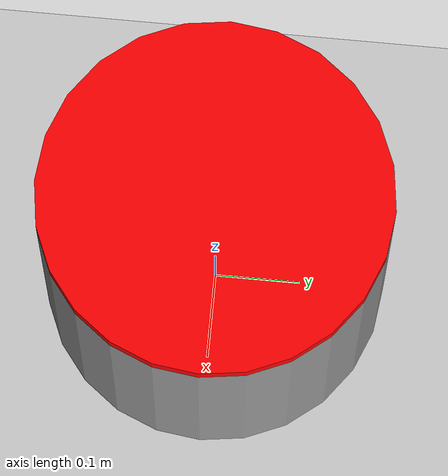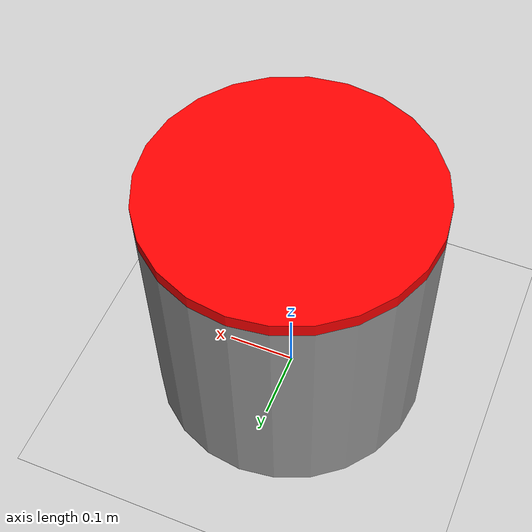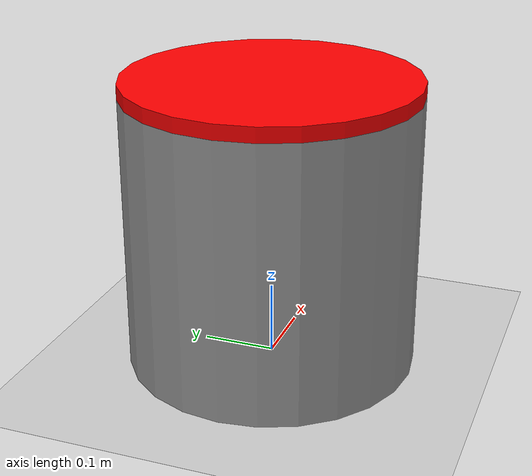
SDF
<?xml version="1.0" ?>
<sdf version="1.4">
  <world name="default">
    <include>
      <uri>model://ground_plane</uri>
    </include>
    <include>
      <uri>model://sun</uri>
    </include>

    <!-- Only require one ROS interface plugin per world, as any other plugin can connect a Gazebo
        topic to a ROS topic (or vise versa). -->
    <plugin name="ros_interface_plugin" filename="librotors_gazebo_ros_interface_plugin.so"></plugin>
    <!-- Rl Interface Plugin -->
    <plugin name="ros_rl_interface_plugin" filename="librl_gazebo_interface_plugin.so"></plugin>

    <spherical_coordinates>
      <surface_model>EARTH_WGS84</surface_model>
      <latitude_deg>47.3667</latitude_deg>
      <longitude_deg>8.5500</longitude_deg>
      <elevation>500.0</elevation>
      <heading_deg>0</heading_deg>
    </spherical_coordinates>
    <physics type='ode'>
      <ode>
        <solver>
          <type>quick</type>
          <iters>1000</iters>
          <sor>1.3</sor>
        </solver>
        <constraints>
          <cfm>0</cfm>
          <erp>0.2</erp>
          <contact_max_correcting_vel>100</contact_max_correcting_vel>
          <contact_surface_layer>0.001</contact_surface_layer>
        </constraints>
      </ode>
      <max_step_size>0.01</max_step_size>
      <real_time_factor>1</real_time_factor>
      <real_time_update_rate>100</real_time_update_rate>
      <gravity>0 0 -9.8</gravity>
    </physics>

    <include>
      <pose>0 0 0 0 0 0</pose>
      <uri>model://moving_mix_cylinder</uri>
    </include>

  </world>
</sdf>

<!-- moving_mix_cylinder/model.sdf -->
<sdf version='1.5'>
  <model name="mix_cylinder">
    <pose>0 0 0.19 0 0 0</pose>
    <link name="link_00">
      <pose>0.0 0 0.19 0 0 0</pose>
      <self_collide>0</self_collide>
      <kinematic>0</kinematic>
      <gravity>0</gravity>
      <visual name='visual_00'>
        <geometry>
          <cylinder>
            <radius>0.2</radius>
            <length>0.38</length>
          </cylinder>
        </geometry>
        <material>
          <script>
            <name>Gazebo/Grey</name>
            <uri>file://media/materials/scripts/gazebo.material</uri>
          </script>
          <ambient>0.3 0.3 0.3 1</ambient>
          <diffuse>0.7 0.7 0.7 1</diffuse>
          <specular>0.01 0.01 0.01 1</specular>
          <emissive>0 0 0 1</emissive>
          <shader type='vertex'>
            <normal_map>__default__</normal_map>
          </shader>
        </material>
        <pose frame=''>0 0 0 0 -0 0</pose>
        <cast_shadows>1</cast_shadows>
        <transparency>0</transparency>
      </visual>
    </link>

    <link name="link_01">
      <pose>0.0 0 0.39 0 0 0</pose>
      <gravity>0</gravity>
      <visual name='visual_01'>
        <geometry>
          <cylinder>
            <radius>0.2</radius>
            <length>0.02</length>
          </cylinder>
        </geometry>
        <material>
          <script>
            <name>Gazebo/Grey</name>
            <uri>file://media/materials/scripts/gazebo.material</uri>
          </script>
          <ambient>1 0 0 1</ambient>
          <diffuse>1 0 0 1</diffuse>
          <specular>0.01 0 0 1</specular>
          <emissive>0 0 0 1</emissive>
          <shader type='vertex'>
            <normal_map>__default__</normal_map>
          </shader>
        </material>
        <pose frame=''>0 0 0 0 -0 0</pose>
        <cast_shadows>1</cast_shadows>
        <transparency>0</transparency>
      </visual>
    </link>
    <plugin name="model_push" filename="libgazebo_moving_bucket.so">
        <robotNamespace>/</robotNamespace>
    </plugin>
  </model>
</sdf>
